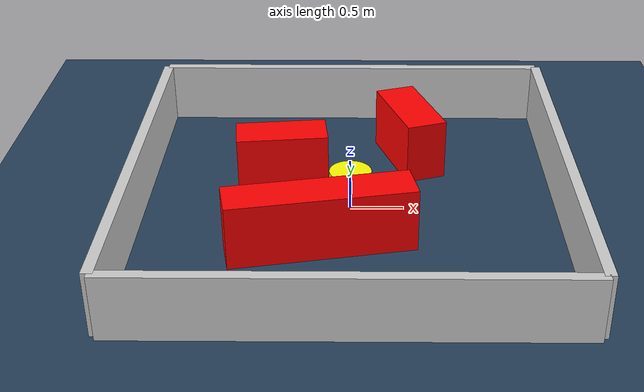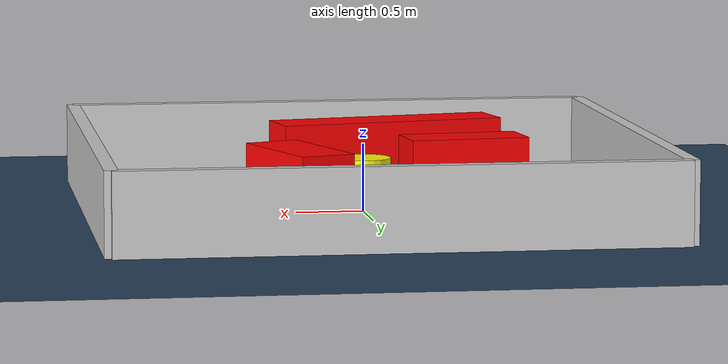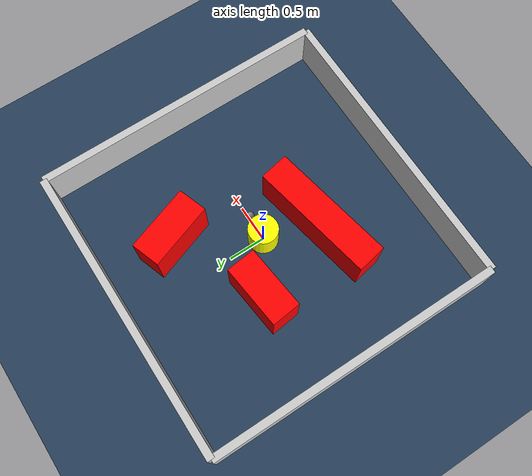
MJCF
<?xml version="1.0" ?>
<mujoco model="generated_environment">
  <option timestep="0.01" integrator="RK4" cone="elliptic"/>
  <default>
    <geom density="1"/>
  </default>
  <asset>
    <texture builtin="gradient" height="3072" rgb1="0.3 0.5 0.7" rgb2="0 0 0" type="skybox" width="512"/>
    <texture builtin="checker" height="300" mark="edge" markrgb="0.8 0.8 0.8" name="groundplane" rgb1="0.2 0.3 0.4" rgb2="0.1 0.2 0.3" type="2d" width="300"/>
    <material name="groundplane" reflectance="0.2" texrepeat="5 5" texture="groundplane" texuniform="true"/>
    <material name="robot" rgba="0.0 1.0 0.0 1"/>
  </asset>
  <worldbody>
    <light dir="0 0 -1" directional="true" pos="0 0 1.5"/>
    <geom condim="4" friction="1.0 0.005 0.001" material="groundplane" name="floor" size="0 0 0.05" type="plane"/>
    <body name="walls">
      <geom name="wall_1" condim="4" pos="-2.0 0.0 0.3" rgba="0.800000011920929 0.800000011920929 0.800000011920929 1.0" size="0.05 2.0 0.3" type="box"/>
      <geom name="wall_2" condim="4" pos="2.0 0.0 0.3" rgba="0.800000011920929 0.800000011920929 0.800000011920929 1.0" size="0.05 2.0 0.3" type="box"/>
      <geom name="wall_3" condim="4" pos="0.0 -2.0 0.3" rgba="0.800000011920929 0.800000011920929 0.800000011920929 1.0" size="2.0 0.05 0.3" type="box"/>
      <geom name="wall_4" condim="4" pos="0.0 2.0 0.3" rgba="0.800000011920929 0.800000011920929 0.800000011920929 1.0" size="2.0 0.05 0.3" type="box"/>
    </body>
    <body name="robot">
      <joint name="joint_x" type="slide" pos="0 0 0" axis="1 0 0"/>
      <joint name="joint_y" type="slide" pos="0 0 0" axis="0 1 0"/>
      <geom name="robot" type="sphere" pos="0.3 0.0 0.2" size="0.05" mass="5." friction="1.0 0.005 0.0001" condim="4" rgba="0.5 0.5 0.5 1.0"/>
      <site name="sensor_ball"/>
    </body>
    <body name="obstacle_movable_1">
      <geom name="obstacle_movable_1" condim="4" pos="0.0 0.0 0.2" euler="0 0 0.0" friction="1.0 0.005 0.001" rgba="1.0 1.0 0.0 1.0" size="0.2 0.2 0.0" type="cylinder" mass="0.1"/>
      <joint type="free"/>
    </body>
    <body name="obstacle_2_static">
      <geom name="obstacle_2_static" condim="4" pos="-0.265652728064788 -0.6967149080115254 0.3" euler="0 0 11.016316442946913" friction="1.0 0.005 0.001" rgba="1 0 0 1" size="0.853056631500132 0.2 0.3" type="box"/>
    </body>
    <body name="obstacle_3_static">
      <geom name="obstacle_3_static" condim="4" pos="-0.6691653815435873 0.4372391949528478 0.3" euler="0 0 6.353744837572792" friction="1.0 0.005 0.001" rgba="1 0 0 1" size="0.43535829041894014 0.2 0.3" type="box"/>
    </body>
    <body name="obstacle_4_static">
      <geom name="obstacle_4_static" condim="4" pos="0.5977077061452785 0.9921380994902169 0.3" euler="0 0 109.08529935325643" friction="1.0 0.005 0.001" rgba="1 0 0 1" size="0.4552550212798123 0.2 0.3" type="box"/>
    </body>
  </worldbody>
  <actuator>
    <motor name="actuator_x" joint="joint_x" gear="1" ctrlrange="-1 1"/>
    <motor name="actuator_y" joint="joint_y" gear="1" ctrlrange="-1 1"/>
  </actuator>
</mujoco>
